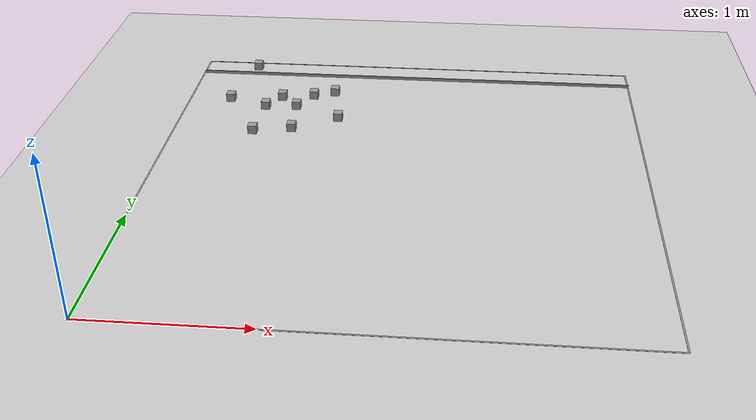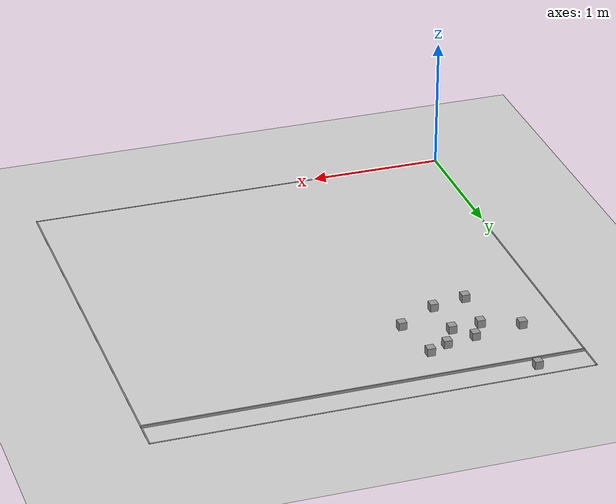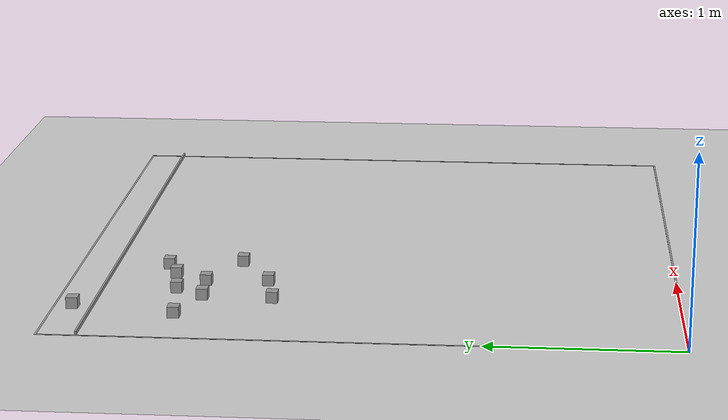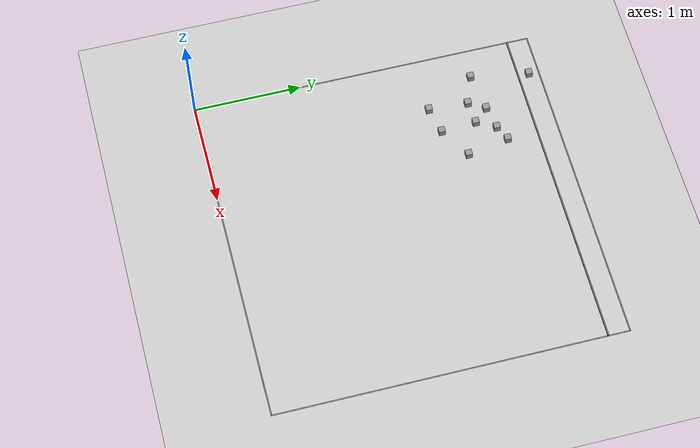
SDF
<sdf version="1.7">
 <world name="default">
  <light name="sun" type="directional">
   <pose>0 0 10 0 -0 0</pose>
   <diffuse>0.8 0.8 0.8 1</diffuse>
   <specular>0.2 0.2 0.2 1</specular>
   <attenuation>
    <range>1000</range>
    <constant>0.9</constant>
    <linear>0.01</linear>
    <quadratic>0.001</quadratic>
   </attenuation>
   <direction>-0.5 0.1 -0.9</direction>
   <spot><inner_angle>0</inner_angle><outer_angle>0</outer_angle><falloff>0</falloff></spot>
  </light>
  <model name="ground_plane">
   <static>1</static>
   <link name="link">
    <collision name="collision">
     <geometry><plane><normal>0 0 1</normal><size>100 100</size></plane></geometry>
     <surface>
      <contact><collide_bitmask>65535</collide_bitmask></contact>
      <friction><ode><mu>100</mu><mu2>50</mu2></ode></friction>
     </surface>
    </collision>
    <visual name="visual">
     <cast_shadows>0</cast_shadows>
     <geometry><plane><normal>0 0 1</normal><size>100 100</size></plane></geometry>
     <material>
      <script><uri>file://media/materials/scripts/gazebo.material</uri><name>Gazebo/Grey</name></script>
     </material>
    </visual>
   </link>
  </model>
  <gravity>0 0 -9.8</gravity>
  <magnetic_field>6e-06 2.3e-05 -4.2e-05</magnetic_field>
  <atmosphere type="adiabatic"/>
  <physics type="ode">
   <max_step_size>0.001</max_step_size>
   <real_time_factor>1</real_time_factor>
   <real_time_update_rate>1000</real_time_update_rate>
  </physics>
  <scene><ambient>0.4 0.4 0.4 1</ambient><background>0.7 0.7 0.7 1</background><shadows>1</shadows></scene>
  <audio><device>default</device></audio>
  <spherical_coordinates>
   <surface_model>EARTH_WGS84</surface_model>
   <latitude_deg>0</latitude_deg>
   <longitude_deg>0</longitude_deg>
   <elevation>0</elevation>
   <heading_deg>0</heading_deg>
  </spherical_coordinates>
  <model name="Untitled">
   <pose>1.6 1.6 0 0 -0 0</pose>
   <link name="Wall_0">
    <collision name="Wall_0_Collision">
     <geometry><box><size>3.21002 0.01 0.001</size></box></geometry>
     <pose>0 0 0.0005 0 -0 0</pose>
    </collision>
    <visual name="Wall_0_Visual">
     <pose>0 0 0.0005 0 -0 0</pose>
     <geometry><box><size>3.21002 0.01 0.001</size></box></geometry>
     <material>
      <script><uri>file://media/materials/scripts/gazebo.material</uri><name>Gazebo/Grey</name></script>
      <ambient>1 1 1 1</ambient>
     </material>
     <meta><layer>0</layer></meta>
    </visual>
    <pose>0 -1.6 0 0 -0 0</pose>
   </link>
   <link name="Wall_12">
    <collision name="Wall_12_Collision">
     <geometry><box><size>3.2 0.01 0.02</size></box></geometry>
     <pose>0 0 0.01 0 -0 0</pose>
    </collision>
    <visual name="Wall_12_Visual">
     <pose>0 0 0.01 0 -0 0</pose>
     <geometry><box><size>3.2 0.01 0.02</size></box></geometry>
     <material>
      <script><uri>file://media/materials/scripts/gazebo.material</uri><name>Gazebo/Grey</name></script>
      <ambient>1 1 1 1</ambient>
     </material>
     <meta><layer>0</layer></meta>
    </visual>
    <pose>0.005 1.4 0 0 -0 3.14159</pose>
   </link>
   <link name="Wall_14">
    <collision name="Wall_14_Collision">
     <geometry><box><size>3.21002 0.01 0.001</size></box></geometry>
     <pose>0 0 0.0005 0 -0 0</pose>
    </collision>
    <visual name="Wall_14_Visual">
     <pose>0 0 0.0005 0 -0 0</pose>
     <geometry><box><size>3.21002 0.01 0.001</size></box></geometry>
     <material>
      <script><uri>file://media/materials/scripts/gazebo.material</uri><name>Gazebo/Grey</name></script>
      <ambient>1 1 1 1</ambient>
     </material>
     <meta><layer>0</layer></meta>
    </visual>
    <pose>1.6 0 0 0 -0 -1.5708</pose>
   </link>
   <link name="Wall_4">
    <collision name="Wall_4_Collision">
     <geometry><box><size>3.21 0.01 0.001</size></box></geometry>
     <pose>0 0 0.0005 0 -0 0</pose>
    </collision>
    <visual name="Wall_4_Visual">
     <pose>0 0 0.0005 0 -0 0</pose>
     <geometry><box><size>3.21 0.01 0.001</size></box></geometry>
     <material>
      <script><uri>file://media/materials/scripts/gazebo.material</uri><name>Gazebo/Grey</name></script>
      <ambient>1 1 1 1</ambient>
     </material>
     <meta><layer>0</layer></meta>
    </visual>
    <pose>-1.6 0 0 0 -0 1.5708</pose>
   </link>
   <link name="Wall_8">
    <collision name="Wall_8_Collision">
     <geometry><box><size>3.21 0.01 0.001</size></box></geometry>
     <pose>0 0 0.0005 0 -0 0</pose>
    </collision>
    <visual name="Wall_8_Visual">
     <pose>0 0 0.0005 0 -0 0</pose>
     <geometry><box><size>3.21 0.01 0.001</size></box></geometry>
     <material>
      <script><uri>file://media/materials/scripts/gazebo.material</uri><name>Gazebo/Grey</name></script>
      <ambient>1 1 1 1</ambient>
     </material>
     <meta><layer>0</layer></meta>
    </visual>
    <pose>0 1.6 0 0 -0 0</pose>
   </link>
   <static>1</static>
  </model>
  <model name="unit_box">
   <link name="link_clone">
    <inertial>
     <mass>1</mass>
     <inertia>
      <ixx>0.166667</ixx>
      <ixy>0</ixy>
      <ixz>0</ixz>
      <iyy>0.166667</iyy>
      <iyz>0</iyz>
      <izz>0.166667</izz>
     </inertia>
    </inertial>
    <visual name="visual">
     <geometry><box><size>0.06 0.06 0.06</size></box></geometry>
     <material>
      <script><name>Gazebo/Grey</name><uri>file://media/materials/scripts/gazebo.material</uri></script>
      <shader type="pixel"><normal_map>__default__</normal_map></shader>
      <ambient>0.3 0.3 0.3 1</ambient>
      <diffuse>0.7 0.7 0.7 1</diffuse>
      <specular>0.01 0.01 0.01 1</specular>
      <emissive>0 0 0 1</emissive>
     </material>
    </visual>
    <collision name="collision">
     <geometry><box><size>0.06 0.06 0.06</size></box></geometry>
     <surface>
      <friction>
       <ode><mu>1</mu><mu2>1</mu2><fdir1>0 0 0</fdir1><slip1>0</slip1><slip2>0</slip2></ode>
       <torsional>
        <coefficient>1</coefficient>
        <patch_radius>0</patch_radius>
        <surface_radius>0</surface_radius>
        <use_patch_radius>1</use_patch_radius>
        <ode><slip>0</slip></ode>
       </torsional>
      </friction>
      <bounce><restitution_coefficient>0</restitution_coefficient><threshold>1e+06</threshold></bounce>
      <contact>
       <collide_without_contact>0</collide_without_contact>
       <collide_without_contact_bitmask>1</collide_without_contact_bitmask>
       <collide_bitmask>1</collide_bitmask>
       <ode>
        <soft_cfm>0</soft_cfm>
        <soft_erp>0.2</soft_erp>
        <kp>1e+13</kp>
        <kd>1</kd>
        <max_vel>0.01</max_vel>
        <min_depth>0</min_depth>
       </ode>
       <bullet>
        <split_impulse>1</split_impulse>
        <split_impulse_penetration_threshold>-0.01</split_impulse_penetration_threshold>
        <soft_cfm>0</soft_cfm>
        <soft_erp>0.2</soft_erp>
        <kp>1e+13</kp>
        <kd>1</kd>
       </bullet>
      </contact>
     </surface>
    </collision>
   </link>
   <link name="link_clone_clone">
    <inertial>
     <mass>1</mass>
     <inertia>
      <ixx>0.166667</ixx>
      <ixy>0</ixy>
      <ixz>0</ixz>
      <iyy>0.166667</iyy>
      <iyz>0</iyz>
      <izz>0.166667</izz>
     </inertia>
    </inertial>
    <pose>0.27289 -0.491658 0 0 -0 0</pose>
    <visual name="visual">
     <geometry><box><size>0.06 0.06 0.06</size></box></geometry>
     <material>
      <script><name>Gazebo/Grey</name><uri>file://media/materials/scripts/gazebo.material</uri></script>
      <shader type="pixel"><normal_map>__default__</normal_map></shader>
      <ambient>0.3 0.3 0.3 1</ambient>
      <diffuse>0.7 0.7 0.7 1</diffuse>
      <specular>0.01 0.01 0.01 1</specular>
      <emissive>0 0 0 1</emissive>
     </material>
    </visual>
    <collision name="collision">
     <geometry><box><size>0.06 0.06 0.06</size></box></geometry>
     <surface>
      <friction>
       <ode><mu>1</mu><mu2>1</mu2><fdir1>0 0 0</fdir1><slip1>0</slip1><slip2>0</slip2></ode>
       <torsional>
        <coefficient>1</coefficient>
        <patch_radius>0</patch_radius>
        <surface_radius>0</surface_radius>
        <use_patch_radius>1</use_patch_radius>
        <ode><slip>0</slip></ode>
       </torsional>
      </friction>
      <bounce><restitution_coefficient>0</restitution_coefficient><threshold>1e+06</threshold></bounce>
      <contact>
       <collide_without_contact>0</collide_without_contact>
       <collide_without_contact_bitmask>1</collide_without_contact_bitmask>
       <collide_bitmask>1</collide_bitmask>
       <ode>
        <soft_cfm>0</soft_cfm>
        <soft_erp>0.2</soft_erp>
        <kp>1e+13</kp>
        <kd>1</kd>
        <max_vel>0.01</max_vel>
        <min_depth>0</min_depth>
       </ode>
       <bullet>
        <split_impulse>1</split_impulse>
        <split_impulse_penetration_threshold>-0.01</split_impulse_penetration_threshold>
        <soft_cfm>0</soft_cfm>
        <soft_erp>0.2</soft_erp>
        <kp>1e+13</kp>
        <kd>1</kd>
       </bullet>
      </contact>
     </surface>
    </collision>
   </link>
   <link name="link_clone_clone_0">
    <inertial>
     <mass>1</mass>
     <inertia>
      <ixx>0.166667</ixx>
      <ixy>0</ixy>
      <ixz>0</ixz>
      <iyy>0.166667</iyy>
      <iyz>0</iyz>
      <izz>0.166667</izz>
     </inertia>
    </inertial>
    <pose>-0.097511 -0.538467 0 0 -0 0</pose>
    <visual name="visual">
     <geometry><box><size>0.06 0.06 0.06</size></box></geometry>
     <material>
      <script><name>Gazebo/Grey</name><uri>file://media/materials/scripts/gazebo.material</uri></script>
      <shader type="pixel"><normal_map>__default__</normal_map></shader>
      <ambient>0.3 0.3 0.3 1</ambient>
      <diffuse>0.7 0.7 0.7 1</diffuse>
      <specular>0.01 0.01 0.01 1</specular>
      <emissive>0 0 0 1</emissive>
     </material>
    </visual>
    <collision name="collision">
     <geometry><box><size>0.06 0.06 0.06</size></box></geometry>
     <surface>
      <friction>
       <ode><mu>1</mu><mu2>1</mu2><fdir1>0 0 0</fdir1><slip1>0</slip1><slip2>0</slip2></ode>
       <torsional>
        <coefficient>1</coefficient>
        <patch_radius>0</patch_radius>
        <surface_radius>0</surface_radius>
        <use_patch_radius>1</use_patch_radius>
        <ode><slip>0</slip></ode>
       </torsional>
      </friction>
      <bounce><restitution_coefficient>0</restitution_coefficient><threshold>1e+06</threshold></bounce>
      <contact>
       <collide_without_contact>0</collide_without_contact>
       <collide_without_contact_bitmask>1</collide_without_contact_bitmask>
       <collide_bitmask>1</collide_bitmask>
       <ode>
        <soft_cfm>0</soft_cfm>
        <soft_erp>0.2</soft_erp>
        <kp>1e+13</kp>
        <kd>1</kd>
        <max_vel>0.01</max_vel>
        <min_depth>0</min_depth>
       </ode>
       <bullet>
        <split_impulse>1</split_impulse>
        <split_impulse_penetration_threshold>-0.01</split_impulse_penetration_threshold>
        <soft_cfm>0</soft_cfm>
        <soft_erp>0.2</soft_erp>
        <kp>1e+13</kp>
        <kd>1</kd>
       </bullet>
      </contact>
     </surface>
    </collision>
   </link>
   <link name="link_clone_clone_1">
    <inertial>
     <mass>1</mass>
     <inertia>
      <ixx>0.166667</ixx>
      <ixy>0</ixy>
      <ixz>0</ixz>
      <iyy>0.166667</iyy>
      <iyz>0</iyz>
      <izz>0.166667</izz>
     </inertia>
    </inertial>
    <pose>0.17735 -0.640693 0 0 -0 0</pose>
    <visual name="visual">
     <geometry><box><size>0.06 0.06 0.06</size></box></geometry>
     <material>
      <script><name>Gazebo/Grey</name><uri>file://media/materials/scripts/gazebo.material</uri></script>
      <shader type="pixel"><normal_map>__default__</normal_map></shader>
      <ambient>0.3 0.3 0.3 1</ambient>
      <diffuse>0.7 0.7 0.7 1</diffuse>
      <specular>0.01 0.01 0.01 1</specular>
      <emissive>0 0 0 1</emissive>
     </material>
    </visual>
    <collision name="collision">
     <geometry><box><size>0.06 0.06 0.06</size></box></geometry>
     <surface>
      <friction>
       <ode><mu>1</mu><mu2>1</mu2><fdir1>0 0 0</fdir1><slip1>0</slip1><slip2>0</slip2></ode>
       <torsional>
        <coefficient>1</coefficient>
        <patch_radius>0</patch_radius>
        <surface_radius>0</surface_radius>
        <use_patch_radius>1</use_patch_radius>
        <ode><slip>0</slip></ode>
       </torsional>
      </friction>
      <bounce><restitution_coefficient>0</restitution_coefficient><threshold>1e+06</threshold></bounce>
      <contact>
       <collide_without_contact>0</collide_without_contact>
       <collide_without_contact_bitmask>1</collide_without_contact_bitmask>
       <collide_bitmask>1</collide_bitmask>
       <ode>
        <soft_cfm>0</soft_cfm>
        <soft_erp>0.2</soft_erp>
        <kp>1e+13</kp>
        <kd>1</kd>
        <max_vel>0.01</max_vel>
        <min_depth>0</min_depth>
       </ode>
       <bullet>
        <split_impulse>1</split_impulse>
        <split_impulse_penetration_threshold>-0.01</split_impulse_penetration_threshold>
        <soft_cfm>0</soft_cfm>
        <soft_erp>0.2</soft_erp>
        <kp>1e+13</kp>
        <kd>1</kd>
       </bullet>
      </contact>
     </surface>
    </collision>
   </link>
   <link name="link_clone_clone_2">
    <inertial>
     <mass>1</mass>
     <inertia>
      <ixx>0.166667</ixx>
      <ixy>0</ixy>
      <ixz>0</ixz>
      <iyy>0.166667</iyy>
      <iyz>0</iyz>
      <izz>0.166667</izz>
     </inertia>
    </inertial>
    <pose>0.4983 -0.452834 0 0 -0 0</pose>
    <visual name="visual">
     <geometry><box><size>0.06 0.06 0.06</size></box></geometry>
     <material>
      <script><name>Gazebo/Grey</name><uri>file://media/materials/scripts/gazebo.material</uri></script>
      <shader type="pixel"><normal_map>__default__</normal_map></shader>
      <ambient>0.3 0.3 0.3 1</ambient>
      <diffuse>0.7 0.7 0.7 1</diffuse>
      <specular>0.01 0.01 0.01 1</specular>
      <emissive>0 0 0 1</emissive>
     </material>
    </visual>
    <collision name="collision">
     <geometry><box><size>0.06 0.06 0.06</size></box></geometry>
     <surface>
      <friction>
       <ode><mu>1</mu><mu2>1</mu2><fdir1>0 0 0</fdir1><slip1>0</slip1><slip2>0</slip2></ode>
       <torsional>
        <coefficient>1</coefficient>
        <patch_radius>0</patch_radius>
        <surface_radius>0</surface_radius>
        <use_patch_radius>1</use_patch_radius>
        <ode><slip>0</slip></ode>
       </torsional>
      </friction>
      <bounce><restitution_coefficient>0</restitution_coefficient><threshold>1e+06</threshold></bounce>
      <contact>
       <collide_without_contact>0</collide_without_contact>
       <collide_without_contact_bitmask>1</collide_without_contact_bitmask>
       <collide_bitmask>1</collide_bitmask>
       <ode>
        <soft_cfm>0</soft_cfm>
        <soft_erp>0.2</soft_erp>
        <kp>1e+13</kp>
        <kd>1</kd>
        <max_vel>0.01</max_vel>
        <min_depth>0</min_depth>
       </ode>
       <bullet>
        <split_impulse>1</split_impulse>
        <split_impulse_penetration_threshold>-0.01</split_impulse_penetration_threshold>
        <soft_cfm>0</soft_cfm>
        <soft_erp>0.2</soft_erp>
        <kp>1e+13</kp>
        <kd>1</kd>
       </bullet>
      </contact>
     </surface>
    </collision>
   </link>
   <link name="link_clone_clone_3">
    <inertial>
     <mass>1</mass>
     <inertia>
      <ixx>0.166667</ixx>
      <ixy>0</ixy>
      <ixz>0</ixz>
      <iyy>0.166667</iyy>
      <iyz>0</iyz>
      <izz>0.166667</izz>
     </inertia>
    </inertial>
    <pose>0.397199 -0.626812 0 0 -0 0</pose>
    <visual name="visual">
     <geometry><box><size>0.06 0.06 0.06</size></box></geometry>
     <material>
      <script><name>Gazebo/Grey</name><uri>file://media/materials/scripts/gazebo.material</uri></script>
      <shader type="pixel"><normal_map>__default__</normal_map></shader>
      <ambient>0.3 0.3 0.3 1</ambient>
      <diffuse>0.7 0.7 0.7 1</diffuse>
      <specular>0.01 0.01 0.01 1</specular>
      <emissive>0 0 0 1</emissive>
     </material>
    </visual>
    <collision name="collision">
     <geometry><box><size>0.06 0.06 0.06</size></box></geometry>
     <surface>
      <friction>
       <ode><mu>1</mu><mu2>1</mu2><fdir1>0 0 0</fdir1><slip1>0</slip1><slip2>0</slip2></ode>
       <torsional>
        <coefficient>1</coefficient>
        <patch_radius>0</patch_radius>
        <surface_radius>0</surface_radius>
        <use_patch_radius>1</use_patch_radius>
        <ode><slip>0</slip></ode>
       </torsional>
      </friction>
      <bounce><restitution_coefficient>0</restitution_coefficient><threshold>1e+06</threshold></bounce>
      <contact>
       <collide_without_contact>0</collide_without_contact>
       <collide_without_contact_bitmask>1</collide_without_contact_bitmask>
       <collide_bitmask>1</collide_bitmask>
       <ode>
        <soft_cfm>0</soft_cfm>
        <soft_erp>0.2</soft_erp>
        <kp>1e+13</kp>
        <kd>1</kd>
        <max_vel>0.01</max_vel>
        <min_depth>0</min_depth>
       </ode>
       <bullet>
        <split_impulse>1</split_impulse>
        <split_impulse_penetration_threshold>-0.01</split_impulse_penetration_threshold>
        <soft_cfm>0</soft_cfm>
        <soft_erp>0.2</soft_erp>
        <kp>1e+13</kp>
        <kd>1</kd>
       </bullet>
      </contact>
     </surface>
    </collision>
   </link>
   <link name="link_clone_clone_4">
    <inertial>
     <mass>1</mass>
     <inertia>
      <ixx>0.166667</ixx>
      <ixy>0</ixy>
      <ixz>0</ixz>
      <iyy>0.166667</iyy>
      <iyz>0</iyz>
      <izz>0.166667</izz>
     </inertia>
    </inertial>
    <pose>0.644901 -0.390035 0 0 -0 0</pose>
    <visual name="visual">
     <geometry><box><size>0.06 0.06 0.06</size></box></geometry>
     <material>
      <script><name>Gazebo/Grey</name><uri>file://media/materials/scripts/gazebo.material</uri></script>
      <shader type="pixel"><normal_map>__default__</normal_map></shader>
      <ambient>0.3 0.3 0.3 1</ambient>
      <diffuse>0.7 0.7 0.7 1</diffuse>
      <specular>0.01 0.01 0.01 1</specular>
      <emissive>0 0 0 1</emissive>
     </material>
    </visual>
    <collision name="collision">
     <geometry><box><size>0.06 0.06 0.06</size></box></geometry>
     <surface>
      <friction>
       <ode><mu>1</mu><mu2>1</mu2><fdir1>0 0 0</fdir1><slip1>0</slip1><slip2>0</slip2></ode>
       <torsional>
        <coefficient>1</coefficient>
        <patch_radius>0</patch_radius>
        <surface_radius>0</surface_radius>
        <use_patch_radius>1</use_patch_radius>
        <ode><slip>0</slip></ode>
       </torsional>
      </friction>
      <bounce><restitution_coefficient>0</restitution_coefficient><threshold>1e+06</threshold></bounce>
      <contact>
       <collide_without_contact>0</collide_without_contact>
       <collide_without_contact_bitmask>1</collide_without_contact_bitmask>
       <collide_bitmask>1</collide_bitmask>
       <ode>
        <soft_cfm>0</soft_cfm>
        <soft_erp>0.2</soft_erp>
        <kp>1e+13</kp>
        <kd>1</kd>
        <max_vel>0.01</max_vel>
        <min_depth>0</min_depth>
       </ode>
       <bullet>
        <split_impulse>1</split_impulse>
        <split_impulse_penetration_threshold>-0.01</split_impulse_penetration_threshold>
        <soft_cfm>0</soft_cfm>
        <soft_erp>0.2</soft_erp>
        <kp>1e+13</kp>
        <kd>1</kd>
       </bullet>
      </contact>
     </surface>
    </collision>
   </link>
   <link name="link_clone_clone_5">
    <inertial>
     <mass>1</mass>
     <inertia>
      <ixx>0.166667</ixx>
      <ixy>0</ixy>
      <ixz>0</ixz>
      <iyy>0.166667</iyy>
      <iyz>0</iyz>
      <izz>0.166667</izz>
     </inertia>
    </inertial>
    <pose>0.717113 -0.780209 0 0 -0 0</pose>
    <visual name="visual">
     <geometry><box><size>0.06 0.06 0.06</size></box></geometry>
     <material>
      <script><name>Gazebo/Grey</name><uri>file://media/materials/scripts/gazebo.material</uri></script>
      <shader type="pixel"><normal_map>__default__</normal_map></shader>
      <ambient>0.3 0.3 0.3 1</ambient>
      <diffuse>0.7 0.7 0.7 1</diffuse>
      <specular>0.01 0.01 0.01 1</specular>
      <emissive>0 0 0 1</emissive>
     </material>
    </visual>
    <collision name="collision">
     <geometry><box><size>0.06 0.06 0.06</size></box></geometry>
     <surface>
      <friction>
       <ode><mu>1</mu><mu2>1</mu2><fdir1>0 0 0</fdir1><slip1>0</slip1><slip2>0</slip2></ode>
       <torsional>
        <coefficient>1</coefficient>
        <patch_radius>0</patch_radius>
        <surface_radius>0</surface_radius>
        <use_patch_radius>1</use_patch_radius>
        <ode><slip>0</slip></ode>
       </torsional>
      </friction>
      <bounce><restitution_coefficient>0</restitution_coefficient><threshold>1e+06</threshold></bounce>
      <contact>
       <collide_without_contact>0</collide_without_contact>
       <collide_without_contact_bitmask>1</collide_without_contact_bitmask>
       <collide_bitmask>1</collide_bitmask>
       <ode>
        <soft_cfm>0</soft_cfm>
        <soft_erp>0.2</soft_erp>
        <kp>1e+13</kp>
        <kd>1</kd>
        <max_vel>0.01</max_vel>
        <min_depth>0</min_depth>
       </ode>
       <bullet>
        <split_impulse>1</split_impulse>
        <split_impulse_penetration_threshold>-0.01</split_impulse_penetration_threshold>
        <soft_cfm>0</soft_cfm>
        <soft_erp>0.2</soft_erp>
        <kp>1e+13</kp>
        <kd>1</kd>
       </bullet>
      </contact>
     </surface>
    </collision>
   </link>
   <link name="link_clone_clone_6">
    <inertial>
     <mass>1</mass>
     <inertia>
      <ixx>0.166667</ixx>
      <ixy>0</ixy>
      <ixz>0</ixz>
      <iyy>0.166667</iyy>
      <iyz>0</iyz>
      <izz>0.166667</izz>
     </inertia>
    </inertial>
    <pose>0.154846 -1.00701 0 0 -0 0</pose>
    <visual name="visual">
     <geometry><box><size>0.06 0.06 0.06</size></box></geometry>
     <material>
      <script><name>Gazebo/Grey</name><uri>file://media/materials/scripts/gazebo.material</uri></script>
      <shader type="pixel"><normal_map>__default__</normal_map></shader>
      <ambient>0.3 0.3 0.3 1</ambient>
      <diffuse>0.7 0.7 0.7 1</diffuse>
      <specular>0.01 0.01 0.01 1</specular>
      <emissive>0 0 0 1</emissive>
     </material>
    </visual>
    <collision name="collision">
     <geometry><box><size>0.06 0.06 0.06</size></box></geometry>
     <surface>
      <friction>
       <ode><mu>1</mu><mu2>1</mu2><fdir1>0 0 0</fdir1><slip1>0</slip1><slip2>0</slip2></ode>
       <torsional>
        <coefficient>1</coefficient>
        <patch_radius>0</patch_radius>
        <surface_radius>0</surface_radius>
        <use_patch_radius>1</use_patch_radius>
        <ode><slip>0</slip></ode>
       </torsional>
      </friction>
      <bounce><restitution_coefficient>0</restitution_coefficient><threshold>1e+06</threshold></bounce>
      <contact>
       <collide_without_contact>0</collide_without_contact>
       <collide_without_contact_bitmask>1</collide_without_contact_bitmask>
       <collide_bitmask>1</collide_bitmask>
       <ode>
        <soft_cfm>0</soft_cfm>
        <soft_erp>0.2</soft_erp>
        <kp>1e+13</kp>
        <kd>1</kd>
        <max_vel>0.01</max_vel>
        <min_depth>0</min_depth>
       </ode>
       <bullet>
        <split_impulse>1</split_impulse>
        <split_impulse_penetration_threshold>-0.01</split_impulse_penetration_threshold>
        <soft_cfm>0</soft_cfm>
        <soft_erp>0.2</soft_erp>
        <kp>1e+13</kp>
        <kd>1</kd>
       </bullet>
      </contact>
     </surface>
    </collision>
   </link>
   <link name="link_clone_clone_7">
    <inertial>
     <mass>1</mass>
     <inertia>
      <ixx>0.166667</ixx>
      <ixy>0</ixy>
      <ixz>0</ixz>
      <iyy>0.166667</iyy>
      <iyz>0</iyz>
      <izz>0.166667</izz>
     </inertia>
    </inertial>
    <pose>0.415829 -0.954714 0 0 -0 0</pose>
    <visual name="visual">
     <geometry><box><size>0.06 0.06 0.06</size></box></geometry>
     <material>
      <script><name>Gazebo/Grey</name><uri>file://media/materials/scripts/gazebo.material</uri></script>
      <shader type="pixel"><normal_map>__default__</normal_map></shader>
      <ambient>0.3 0.3 0.3 1</ambient>
      <diffuse>0.7 0.7 0.7 1</diffuse>
      <specular>0.01 0.01 0.01 1</specular>
      <emissive>0 0 0 1</emissive>
     </material>
    </visual>
    <collision name="collision">
     <geometry><box><size>0.06 0.06 0.06</size></box></geometry>
     <surface>
      <friction>
       <ode><mu>1</mu><mu2>1</mu2><fdir1>0 0 0</fdir1><slip1>0</slip1><slip2>0</slip2></ode>
       <torsional>
        <coefficient>1</coefficient>
        <patch_radius>0</patch_radius>
        <surface_radius>0</surface_radius>
        <use_patch_radius>1</use_patch_radius>
        <ode><slip>0</slip></ode>
       </torsional>
      </friction>
      <bounce><restitution_coefficient>0</restitution_coefficient><threshold>1e+06</threshold></bounce>
      <contact>
       <collide_without_contact>0</collide_without_contact>
       <collide_without_contact_bitmask>1</collide_without_contact_bitmask>
       <collide_bitmask>1</collide_bitmask>
       <ode>
        <soft_cfm>0</soft_cfm>
        <soft_erp>0.2</soft_erp>
        <kp>1e+13</kp>
        <kd>1</kd>
        <max_vel>0.01</max_vel>
        <min_depth>0</min_depth>
       </ode>
       <bullet>
        <split_impulse>1</split_impulse>
        <split_impulse_penetration_threshold>-0.01</split_impulse_penetration_threshold>
        <soft_cfm>0</soft_cfm>
        <soft_erp>0.2</soft_erp>
        <kp>1e+13</kp>
        <kd>1</kd>
       </bullet>
      </contact>
     </surface>
    </collision>
   </link>
   <static>0</static>
   <pose>0.4 3.1 0.03 0 -0 0</pose>
  </model>
 </world>
</sdf>
